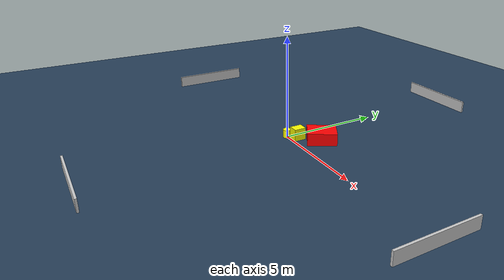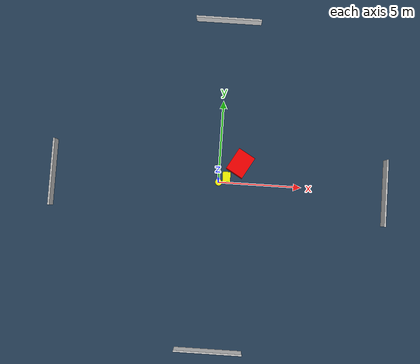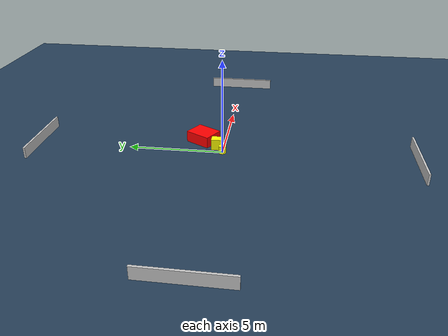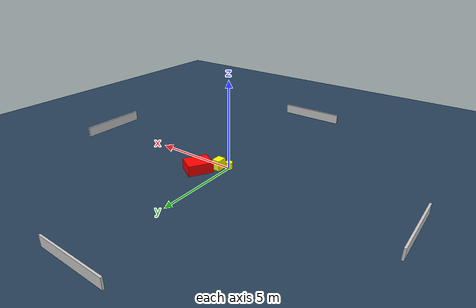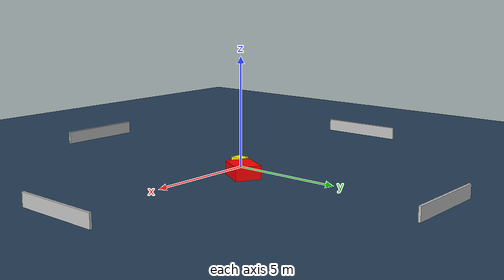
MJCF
<?xml version="1.0" ?>
<mujoco model="generated_environment">
  <option timestep="0.01" integrator="RK4" cone="elliptic"/>
  <default>
    <geom density="1"/>
  </default>
  <asset>
    <texture builtin="gradient" height="3072" name="skybox" rgb1="0.3 0.5 0.7" rgb2="0 0 0" type="skybox" width="512"/>
    <texture builtin="checker" height="300" name="groundplane" rgb1="0.2 0.3 0.4" rgb2="0.1 0.2 0.3" type="2d" width="300"/>
    <material name="groundplane" reflectance="0.2" texrepeat="5 5" texture="groundplane"/>
  </asset>
  <worldbody>
    <light dir="0 0 -1" directional="true" pos="0 0 1.5"/>
    <geom condim="3" friction="0.5 0.005 0.001" material="groundplane" name="floor" pos="0 0 0" size="0 0 0.05" type="plane"/>
    <body name="walls">
      <geom name="wall_1" condim="4" pos="-10.0 0.0 0.3" rgba="0.800000011920929 0.800000011920929 0.800000011920929 1.0" size="0.05 2.0 0.3" type="box"/>
      <geom name="wall_2" condim="4" pos="10.0 0.0 0.3" rgba="0.800000011920929 0.800000011920929 0.800000011920929 1.0" size="0.05 2.0 0.3" type="box"/>
      <geom name="wall_3" condim="4" pos="0.0 -10.0 0.3" rgba="0.800000011920929 0.800000011920929 0.800000011920929 1.0" size="2.0 0.05 0.3" type="box"/>
      <geom name="wall_4" condim="4" pos="0.0 10.0 0.3" rgba="0.800000011920929 0.800000011920929 0.800000011920929 1.0" size="2.0 0.05 0.3" type="box"/>
    </body>
    <body name="robot">
      <joint name="joint_x" type="slide" pos="0 0 0" axis="1 0 0"/>
      <joint name="joint_y" type="slide" pos="0 0 0" axis="0 1 0"/>
      <geom name="robot" type="cylinder" pos="0.0 0.0 0.2" size="0.2 0.2 0.0" mass="5.0" friction="1.0 0.005 0.0001" condim="4" rgba="1.0 1.0 0.0 1.0"/>
    </body>
    <body name="obstacle_1_movable">
      <geom name="obstacle_1_movable" condim="4" pos="0.4517316223519575 0.3469600393010736 0.3" euler="0 0 90.19328401057456" friction="0.0 0.005 0.001" rgba="1.0 1.0 0.0 1.0" size="0.2962425189432327 0.231780996924159 0.3" type="box" mass="0.1"/>
      <joint type="free"/>
    </body>
    <body name="obstacle_2_static">
      <geom name="obstacle_2_static" condim="4" pos="1.2419150378724853 1.2066404366663768 0.3" euler="0 0 239.89923866816903" friction="0.0 0.005 0.001" rgba="1.0 0.0 0.0 1.0" size="0.710506379818588 0.5630189133683721 0.3" type="box"/>
    </body>
  </worldbody>
  <actuator>
    <motor name="actuator_x" joint="joint_x" gear="1" ctrlrange="-1 1"/>
    <motor name="actuator_y" joint="joint_y" gear="1" ctrlrange="-1 1"/>
  </actuator>
</mujoco>
